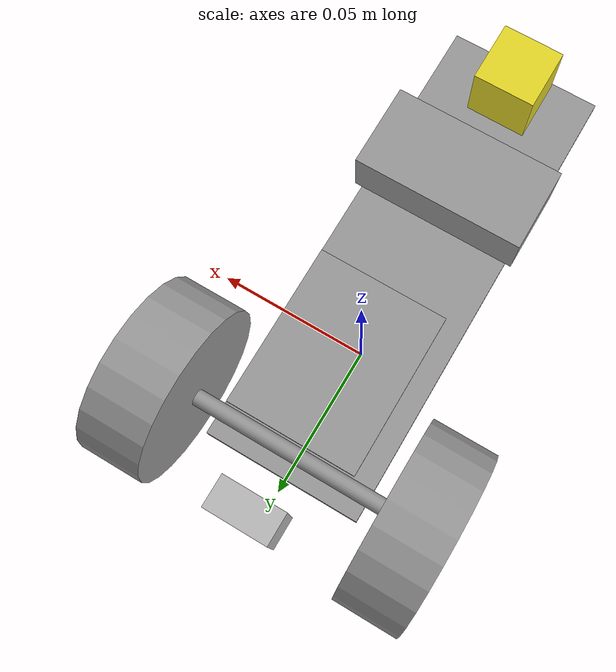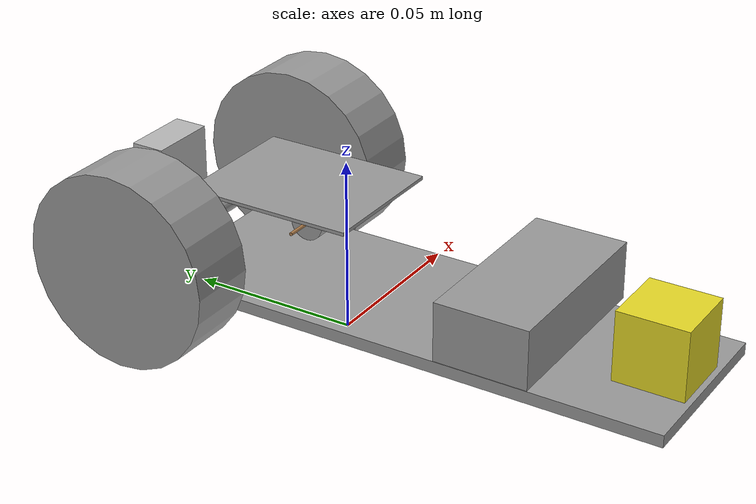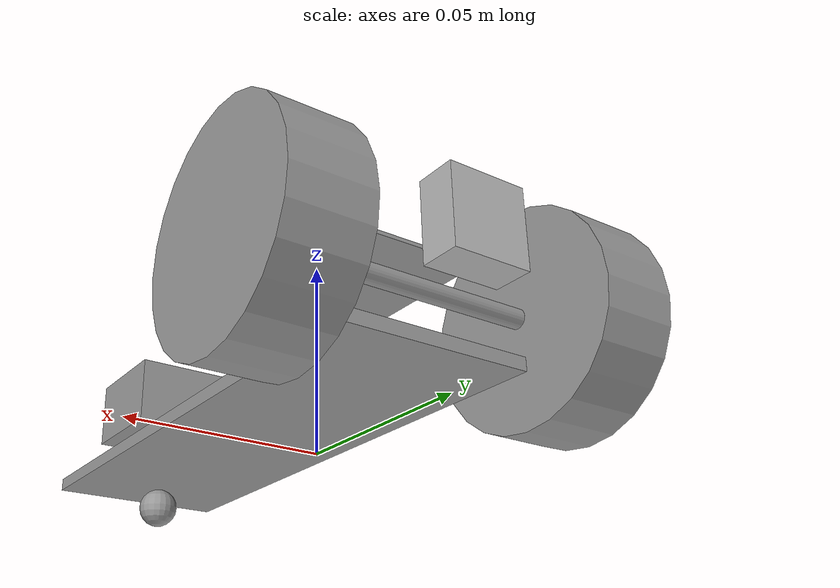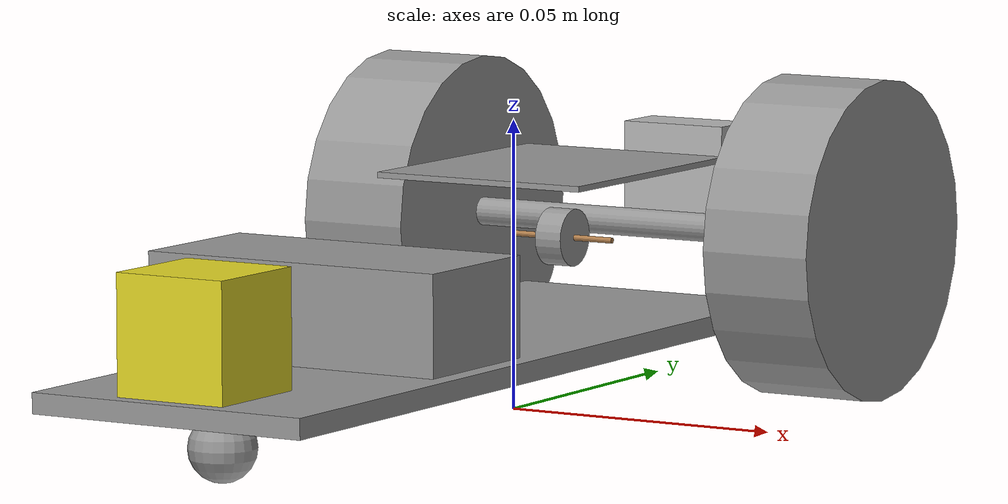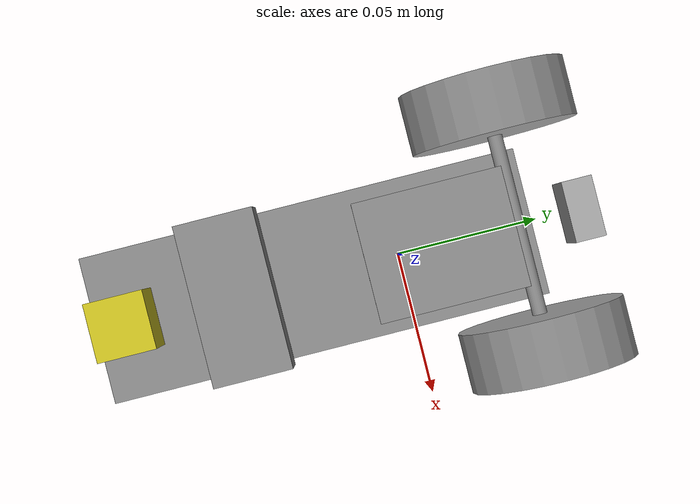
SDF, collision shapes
<?xml version="1.0" ?>
<sdf version="1.5">

  <model name="vehicle_weight_rear">

    <link name="weight">
      <pose>0.0 -0.095 0.0252 0 0 0</pose>
      <inertial>
        <mass>0.3</mass>
        <inertia>
          <ixx>0.0001</ixx>
          <ixy>0</ixy>
          <ixz>0</ixz>
          <iyy>0.0001</iyy>
          <iyz>0</iyz>
          <izz>0.0001</izz>
        </inertia>
      </inertial>
      <collision name="collision">
        <pose>0.0 0.0 0 0 0 0</pose>
        <geometry>
          <box>
            <size>0.02 0.02 0.02</size>
          </box>
        </geometry>
      </collision>
      <visual name="visual">
        <pose>0 0 0.0 0 0 0</pose>
        <geometry>
          <box>
            <size>0.02 0.02 0.02</size>
          </box>
        </geometry>
        <material>
          <script>
            <uri>file://media/materials/scripts/gazebo.material</uri>
            <name>Gazebo/Yellow</name>
          </script>
        </material>
      </visual>
    </link>

    <joint name="chassis_v2_weight_joint" type="fixed">
      <parent>chassis_v2::link</parent>
      <child>weight</child>
    </joint>

    <link name="link">
      <pose>0.0 0.060 0.034 0 0 0</pose>
      <inertial>
        <mass>0.5</mass>
        <inertia>
          <ixx>0.0001</ixx>
          <ixy>0</ixy>
          <ixz>0</ixz>
          <iyy>0.0001</iyy>
          <iyz>0</iyz>
          <izz>0.0001</izz>
        </inertia>
      </inertial>
      <collision name="collision">
        <pose>0.0 0.0 0 0 0 0</pose>
        <geometry>
          <box>
            <size>0.02 0.01 0.02</size>
          </box>
        </geometry>
      </collision>
      <visual name="visual">
        <pose>0 0 0.0 0 0 0</pose>
        <geometry>
          <box>
            <size>0.02 0.01 0.02</size>
          </box>
        </geometry>
      </visual>
    </link>

    <model name="chassis_v2">
      <pose>0 0 0.0132 0 0 0</pose>
      <link name="link">
        <inertial>
          <mass>0.1</mass>
          <inertia>
            <ixx>0.00022</ixx>
            <ixy>0</ixy>
            <ixz>0</ixz>
            <iyy>0.00022</iyy>
            <iyz>0</iyz>
            <izz>0.00022</izz>
          </inertia>
        </inertial>
        <collision name="collision">
          <pose>0.000 -0.0300 0 1.57079632679 0 0</pose>
          <geometry>
            <box>
              <size>0.051 0.0035 0.153</size>
            </box>
          </geometry>
        </collision>
        <visual name="visual">
          <pose>0 0 0.0 1.57079632679 0 0</pose>
          <geometry>
            <mesh>
              <uri>model://chassis_v2/meshes/chassis_v2.dae</uri>
              <scale>0.001 0.001 0.001</scale>
            </mesh>
          </geometry>
          <material>
            <script>
              <uri>file://media/materials/scripts/gazebo.material</uri>
              <name>Gazebo/Grey</name>
            </script>
          </material>
        </visual>
      </link>
    </model>

    <model name="axle_wheels">
      <pose>0 0.040 0.028 0 0 0</pose>
      <link name="link">
        <inertial>
          <mass>0.1</mass>
          <inertia>
            <ixx>0.00014390</ixx>
            <ixy>0</ixy>
            <ixz>0</ixz>
            <iyy>0.00014390</iyy>
            <iyz>0</iyz>
            <izz>0.00014390</izz>
          </inertia>
        </inertial>
        <collision name="axle_collision">
          <pose>0 0 0.0 0 1.57079632679 0</pose>
          <geometry>
            <cylinder>
              <radius>0.0025</radius>
              <length>0.08</length>
            </cylinder>
          </geometry>
        </collision>
        <collision name="wheel_0_collision">
          <pose>-0.0405 0 0.0 0 1.57079632679 0</pose>
          <geometry>
            <cylinder>
              <radius>0.028</radius>
              <length>0.02</length>
            </cylinder>
          </geometry>
          <surface>
            <friction>
              <ode>
                <mu>0.760</mu>
                <mu2>0.760</mu2>
                <fdir1>0 1 0</fdir1>
                <slip1>0.0</slip1>
                <slip2>0.0</slip2>
              </ode>
            </friction>
            <contact>
              <ode>
                <min_depth>0.001</min_depth>
                <max_vel>1</max_vel>
                <kp>1e5</kp>
                <kd>5</kd>
              </ode>
            </contact>
          </surface>
        </collision>
        <collision name="wheel_1_collision">
          <pose>0.0405 0 0.0 0 1.57079632679 0</pose>
          <geometry>
            <cylinder>
              <radius>0.028</radius>
              <length>0.02</length>
            </cylinder>
          </geometry>
          <surface>
            <friction>
              <ode>
                <mu>0.760</mu>
                <mu2>0.760</mu2>
                <fdir1>0 1 0</fdir1>
                <slip1>0.0</slip1>
                <slip2>0.0</slip2>
              </ode>
            </friction>
            <contact>
              <ode>
                <min_depth>0.001</min_depth>
                <max_vel>1</max_vel>
                <kp>1e5</kp>
                <kd>5</kd>
              </ode>
            </contact>
          </surface>
        </collision>
        <visual name="visual">
          <pose>0 0 0.0 0 0 0</pose>
          <geometry>
            <mesh>
              <uri>model://axle_wheels/meshes/axle_wheels.dae</uri>
              <scale>0.001 0.001 0.001</scale>
            </mesh>
          </geometry>
          <material>
            <script>
              <uri>file://media/materials/scripts/gazebo.material</uri>
              <name>Gazebo/Grey</name>
            </script>
          </material>
        </visual>
      </link>
    </model>

    <model name="caster_wheel">
      <pose>0 -0.09 0.0058 0 0 0</pose>
      <link name="link">
        <inertial>
          <mass>0.1</mass>
          <pose>0 0 0 0 0 0</pose>
          <inertia>
            <ixx>0.00001</ixx>
            <ixy>0</ixy>
            <ixz>0</ixz>
            <iyy>0.00001</iyy>
            <iyz>0</iyz>
            <izz>0.00001</izz>
          </inertia>
        </inertial>

        <!-- Physics -->
        <collision name="collision">
          <pose>0 0 0.0 0 0 0</pose>
          <geometry>
            <sphere>
              <radius>0.0057</radius>
            </sphere>
          </geometry>

          <surface>
            <friction>
              <ode>
                <mu>0.1</mu>
                <mu2>0.1</mu2>
                <fdir1>0 1 0</fdir1>
                <slip1>0.0</slip1>
                <slip2>0.0</slip2>
              </ode>
            </friction>
            <contact>
              <ode>
                <min_depth>0.001</min_depth>
                <max_vel>1</max_vel>
                <kp>1e5</kp>
                <kd>5</kd>
              </ode>
            </contact>
          </surface>

        </collision>

        <visual name="visual">
          <geometry>
            <sphere>
              <radius>0.0057</radius>
            </sphere>
          </geometry>
          <material>
            <script>
              <name>Gazebo/Grey</name>
            </script>
          </material>
        </visual>
      </link>
    </model>

    <model name="battery_9v">
      <pose>0 -0.057 0.025 0 0 -1.57</pose>
        <link name="link">
          <inertial>
            <mass>0.1</mass>
            <inertia>
              <ixx>0.0001</ixx>
              <ixy>0</ixy>
              <ixz>0</ixz>
              <iyy>0.0001</iyy>
              <iyz>0</iyz>
              <izz>0.0001</izz>
            </inertia>
          </inertial>
          <collision name="collision">
            <pose>0 0 0.0 0 0 0</pose>
            <geometry>
              <box>
                <size>0.027 0.055 0.017</size>
              </box>
            </geometry>
          </collision>
          <visual name="visual">
            <pose>0 0 0.0 0 0 0</pose>
            <geometry>
              <mesh>
                <uri>model://battery_9v/meshes/battery_9v.dae</uri>
                <scale>0.001 0.001 0.001</scale>
              </mesh>
            </geometry>
            <material>
              <script>
                <uri>file://media/materials/scripts/gazebo.material</uri>
                <name>Gazebo/Grey</name>
              </script>
            </material>
          </visual>
        </link>
        <plugin filename="libPowerSourcePlugin.so" name="battery">
          <port>
            <name>positive</name>
            <type>electrical</type>
          </port>
          <port>
            <name>negative</name>
            <type>electrical</type>
          </port>
          <properties>
            <voltage>9</voltage>
           <capacity>0.60</capacity>
            <current>0.1</current>
          </properties>
        </plugin>
    </model>

    <model name="motor">
      <pose>0 0.013 0.0285 0 0 0</pose>
      <link name="link">
        <inertial>
          <mass>0.1</mass>
          <inertia>
            <ixx>0.000001</ixx>
            <ixy>0</ixy>
            <ixz>0</ixz>
            <iyy>0.000001</iyy>
            <iyz>0</iyz>
            <izz>0.000001</izz>
          </inertia>
        </inertial>
        <pose>0.0 0 0.0 0 0 0</pose>
        <self_collide>false</self_collide>
        <visual name="visual">
          <pose>0 0 0.0 0 0 0</pose>
          <geometry>
            <mesh>
              <uri>model://motor/meshes/motor.dae</uri>
              <scale>0.001 0.001 0.001</scale>
            </mesh>
          </geometry>
          <material>
            <script>
              <uri>file://media/materials/scripts/gazebo.material</uri>
              <name>Gazebo/Grey</name>
            </script>
          </material>
        </visual>
      </link>

      <link name="motor_core_link">
        <pose>0.002 0 0.0 0 0 0</pose>
        <self_collide>false</self_collide>
        <gravity>false</gravity>
        <inertial>
          <mass>0.1</mass>
          <inertia>
            <ixx>0.0001</ixx>
            <ixy>0</ixy>
            <ixz>0</ixz>
            <iyy>0.0001</iyy>
            <iyz>0</iyz>
            <izz>0.0001</izz>
          </inertia>
        </inertial>
        <collision name="collision">
          <pose>0.0 0 0.0 0 1.57079632679 0</pose>
          <geometry>
            <cylinder>
              <radius>0.005</radius>
              <length>0.005</length>
            </cylinder>
          </geometry>
        </collision>
        <visual name="visual">
          <pose>0.0 0 0.0 0 1.57079632679 0</pose>
          <geometry>
            <cylinder>
              <radius>0.005</radius>
              <length>0.005</length>
            </cylinder>
          </geometry>
          <material>
            <script>
              <uri>file://media/materials/scripts/gazebo.material</uri>
              <name>Gazebo/Grey</name>
            </script>
          </material>
        </visual>
      </link>

      <link name="motor_shaft_link">
        <pose>0.002 0 0.0 0 0 0</pose>
        <self_collide>false</self_collide>
        <gravity>false</gravity>
        <inertial>
          <mass>0.0001</mass>
          <inertia>
            <ixx>0.00000004</ixx>
            <ixy>0</ixy>
            <ixz>0</ixz>
            <iyy>0.00000004</iyy>
            <iyz>0</iyz>
            <izz>0.00000004</izz>
          </inertia>
        </inertial>
        <collision name="collision">
          <pose>0.0 0 0.0 0 1.57079632679 0</pose>
          <geometry>
            <cylinder>
              <radius>0.0005</radius>
              <length>0.020</length>
            </cylinder>
          </geometry>
        </collision>
        <visual name="debug_visual">
          <pose>0.0 0 0.0 0 1.57079632679 0</pose>
          <geometry>
            <box>
              <size>0.01 0.02 0.03</size>
            </box>
          </geometry>
        </visual>

        <visual name="visual">
          <pose>0.0 0 0.0 0 1.57079632679 0</pose>
          <geometry>
            <cylinder>
              <radius>0.0005</radius>
              <length>0.020</length>
            </cylinder>
          </geometry>
          <material>
            <script>
              <uri>file://media/materials/scripts/gazebo.material</uri>
              <name>Gazebo/Wood</name>
            </script>
          </material>
        </visual>
        <velocity_decay>
          <angular>0.000001</angular>
        </velocity_decay>
      </link>

      <joint name="motor_shaft_joint" type="revolute">
        <parent>motor_core_link</parent>
        <child>motor_shaft_link</child>
        <axis>
          <xyz>1 0 0</xyz>
          <limit>
            <lower>-1000000000000000</lower>
            <upper>1000000000000000</upper>
          </limit>
          <dynamics>
            <damping>0.0000003</damping>
          </dynamics>
        </axis>
      </joint>

      <joint name="motor_joint" type="fixed">
        <parent>motor_core_link</parent>
        <child>link</child>
      </joint>

      <plugin filename="libMotorPlugin.so" name="motor">
        <port>
          <name>shaft</name>
          <type>mechanical</type>
        </port>
        <port>
          <name>connector0</name>
          <type>electrical</type>
        </port>
        <port>
          <name>connector1</name>
          <type>electrical</type>
        </port>

        <properties>
          <resistance>5</resistance>
          <back_emf>0.00356</back_emf>
          <torque_constant>0.0020</torque_constant>
        </properties>

        <shaft_joint>motor_shaft_joint</shaft_joint>
      </plugin>

    </model>

    <model name="gearbox">
      <pose>0 0.013 0.0285 0 0 0</pose>
      <link name="link">
        <inertial>
          <mass>0.01</mass>
          <inertia>
            <ixx>0.000001</ixx>
            <ixy>0</ixy>
            <ixz>0</ixz>
            <iyy>0.000001</iyy>
            <iyz>0</iyz>
            <izz>0.000001</izz>
          </inertia>
        </inertial>
        <collision name="collision">
          <pose>0 0.0 0.012 1.57079632679 0 1.57079632679</pose>
          <geometry>
            <box>
              <size>0.05 0.001 0.04</size>
            </box>
          </geometry>
        </collision>
        <visual name="visual">
          <pose>0 0 0.0 1.57079632679 0 1.57079632679</pose>
          <geometry>
            <mesh>
              <uri>model://gearbox/meshes/gearbox.dae</uri>
              <scale>0.001 0.001 0.001</scale>
            </mesh>
          </geometry>
          <material>
            <script>
              <uri>file://media/materials/scripts/gazebo.material</uri>
              <name>Gazebo/Grey</name>
            </script>
          </material>
        </visual>
      </link>
      <plugin filename="libGearboxPlugin.so" name="gearbox">
        <properties>
          <parent>axle_wheels::link</parent>
          <child>motor::motor_shaft_link</child>
          <gear_ratio>1.0</gear_ratio>
          <efficiency>0.92</efficiency>
        </properties>
      </plugin>
    </model>

    <joint name="chassis_v2_battery_9v_joint" type="fixed">
      <parent>chassis_v2::link</parent>
      <child>battery_9v::link</child>
    </joint>

    <joint name="chassis_v2_gearbox_joint" type="fixed">
      <parent>chassis_v2::link</parent>
      <child>gearbox::link</child>
    </joint>

    <joint name="chassis_v2_motor_joint" type="fixed">
      <parent>chassis_v2::link</parent>
      <child>motor::link</child>
    </joint>

    <joint name="chassis_v2_axle_joint" type="revolute">
      <parent>chassis_v2::link</parent>
      <child>axle_wheels::link</child>
      <axis>
        <xyz>1 0 0</xyz>
        <limit>
          <lower>-1000000000000000</lower>
          <upper>1000000000000000</upper>
        </limit>
      </axis>
    </joint>

    <joint name="chassis_v2_caster_joint" type="ball">
      <parent>chassis_v2::link</parent>
      <child>caster_wheel::link</child>
    </joint>

    <joint name="chassis_v2_link_joint" type="fixed">
      <parent>chassis_v2::link</parent>
      <child>link</child>
    </joint>

    <joint name="gearbox_axle_joint" type="revolute">
      <parent>gearbox::link</parent>
      <child>axle_wheels::link</child>
      <axis>
        <xyz>1 0 0</xyz>
        <limit>
          <lower>-1000000000000000</lower>
          <upper>1000000000000000</upper>
        </limit>
      </axis>
    </joint>

    <joint name="gearbox_motor_joint" type="fixed">
      <parent>gearbox::link</parent>
      <child>motor::link</child>
    </joint>

    <plugin name="simple_connections" filename="libSimpleConnectionsPlugin.so">
      <connection>
        <source>battery_9v</source>
        <source_port>positive</source_port>
        <target>motor</target>
        <target_port>connector0</target_port>
      </connection>

      <connection>
        <source>motor</source>
        <source_port>connector1</source_port>
        <target>battery_9v</target>
        <target_port>negative</target_port>
      </connection>
    </plugin>

    <plugin name="WheelSlip" filename="libWheelSlipPlugin.so"/>

  </model>

</sdf>
